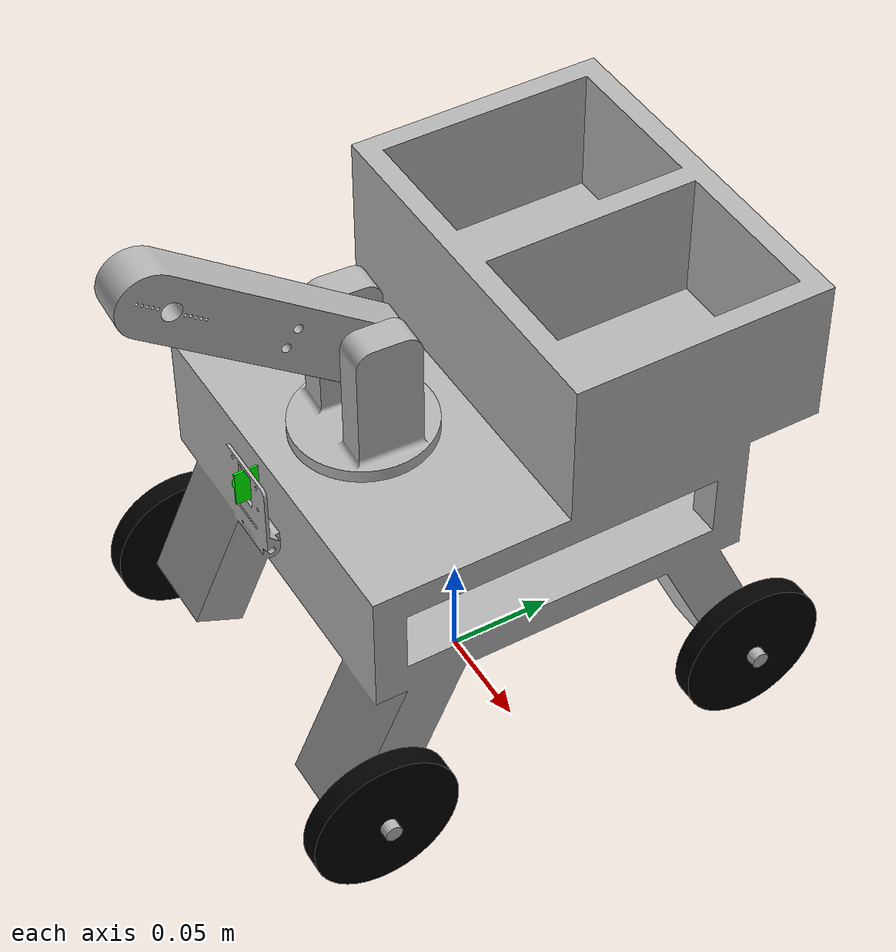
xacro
<?xml version="1.0" ?>
<robot name="my_robot" xmlns:xacro="http://www.ros.org/wiki/xacro">

<xacro:include filename="materials.xacro" />
<xacro:include filename="camera.xacro" />
<xacro:include filename="drive_control.xacro" />
<xacro:include filename="lidar.xacro" />

<link name="base_footprint"/>

<link name="base_link">
  <inertial>
    <origin xyz="-9.068721438447272e-07 0.016818956769741884 0.13757244036998353" rpy="0 0 0"/>
    <mass value="16.129870302720548"/>
    <inertia ixx="0.106544" iyy="0.090512" izz="0.122735" ixy="-2e-06" iyz="-0.015935" ixz="-0.0"/>
  </inertial>
  <visual>
    <origin xyz="0 0 0" rpy="0 0 0"/>
    <geometry>
      <mesh filename="file:///home/kaushik/major_ws/src/urdf_description/meshes/base_link.stl" scale="0.001 0.001 0.001"/>
    </geometry>
    <material name="silver"/>
  </visual>
  <collision>
    <origin xyz="0 0 0" rpy="0 0 0"/>
    <geometry>
      <mesh filename="file:///home/kaushik/major_ws/src/urdf_description/meshes/base_link.stl" scale="0.001 0.001 0.001"/>
    </geometry>
  </collision>
</link>

<link name="cam_link_1">
  <inertial>
    <origin xyz="0.00029040885549365706 -0.0010028948136634602 -0.00862499966472527" rpy="0 0 0"/>
    <mass value="0.0029877236299923403"/>
    <inertia ixx="0.0" iyy="0.0" izz="0.0" ixy="0.0" iyz="-0.0" ixz="0.0"/>
  </inertial>
  <visual>
    <origin xyz="0.0005 0.09925 -0.164544" rpy="0 0 0"/>
    <geometry>
      <mesh filename="file:///home/kaushik/major_ws/src/urdf_description/meshes/cam_link_1.stl" scale="0.001 0.001 0.001"/>
    </geometry>
    <material name="green"/>
  </visual>
  <collision>
    <origin xyz="0.0005 0.09925 -0.164544" rpy="0 0 0"/>
    <geometry>
      <mesh filename="file:///home/kaushik/major_ws/src/urdf_description/meshes/cam_link_1.stl" scale="0.001 0.001 0.001"/>
    </geometry>
  </collision>
</link>

<link name="left_wheel1_1">
  <inertial>
    <origin xyz="0.004999999999999963 2.695303707445085e-07 3.8435314280577115e-07" rpy="0 0 0"/>
    <mass value="0.300562059655161"/>
    <inertia ixx="0.000185" iyy="9.5e-05" izz="9.5e-05" ixy="0.0" iyz="-0.0" ixz="-0.0"/>
  </inertial>
  <visual>
    <origin xyz="-0.09 0.091905 -0.035" rpy="0 0 0"/>
    <geometry>
      <mesh filename="file:///home/kaushik/major_ws/src/urdf_description/meshes/left_wheel1_1.stl" scale="0.001 0.001 0.001"/>
    </geometry>
    <material name="black"/>
  </visual>
  <collision>
    <origin xyz="-0.09 0.091905 -0.035" rpy="0 0 0"/>
    <geometry>
      <mesh filename="file:///home/kaushik/major_ws/src/urdf_description/meshes/left_wheel1_1.stl" scale="0.001 0.001 0.001"/>
    </geometry>
  </collision>
</link>

<link name="left_wheel2_1">
  <inertial>
    <origin xyz="0.0049999999999999906 -2.6953037318699913e-07 3.8435314281271005e-07" rpy="0 0 0"/>
    <mass value="0.300562059655161"/>
    <inertia ixx="0.000185" iyy="9.5e-05" izz="9.5e-05" ixy="0.0" iyz="-0.0" ixz="-0.0"/>
  </inertial>
  <visual>
    <origin xyz="-0.09 -0.096905 -0.035" rpy="0 0 0"/>
    <geometry>
      <mesh filename="file:///home/kaushik/major_ws/src/urdf_description/meshes/left_wheel2_1.stl" scale="0.001 0.001 0.001"/>
    </geometry>
    <material name="black"/>
  </visual>
  <collision>
    <origin xyz="-0.09 -0.096905 -0.035" rpy="0 0 0"/>
    <geometry>
      <mesh filename="file:///home/kaushik/major_ws/src/urdf_description/meshes/left_wheel2_1.stl" scale="0.001 0.001 0.001"/>
    </geometry>
  </collision>
</link>

<link name="right_wheel1_1">
  <inertial>
    <origin xyz="-0.004999999999999935 2.6953037327026586e-07 3.8435314292373235e-07" rpy="0 0 0"/>
    <mass value="0.300562059655161"/>
    <inertia ixx="0.000185" iyy="9.5e-05" izz="9.5e-05" ixy="0.0" iyz="-0.0" ixz="-0.0"/>
  </inertial>
  <visual>
    <origin xyz="0.09 0.091905 -0.035" rpy="0 0 0"/>
    <geometry>
      <mesh filename="file:///home/kaushik/major_ws/src/urdf_description/meshes/right_wheel1_1.stl" scale="0.001 0.001 0.001"/>
    </geometry>
    <material name="black"/>
  </visual>
  <collision>
    <origin xyz="0.09 0.091905 -0.035" rpy="0 0 0"/>
    <geometry>
      <mesh filename="file:///home/kaushik/major_ws/src/urdf_description/meshes/right_wheel1_1.stl" scale="0.001 0.001 0.001"/>
    </geometry>
  </collision>
</link>

<link name="right_wheel2_1">
  <inertial>
    <origin xyz="-0.004999999999999963 -2.6953037078614184e-07 3.8435314279883226e-07" rpy="0 0 0"/>
    <mass value="0.3005620596551611"/>
    <inertia ixx="0.000185" iyy="9.5e-05" izz="9.5e-05" ixy="-0.0" iyz="-0.0" ixz="0.0"/>
  </inertial>
  <visual>
    <origin xyz="0.09 -0.096905 -0.035" rpy="0 0 0"/>
    <geometry>
      <mesh filename="file:///home/kaushik/major_ws/src/urdf_description/meshes/right_wheel2_1.stl" scale="0.001 0.001 0.001"/>
    </geometry>
    <material name="black"/>
  </visual>
  <collision>
    <origin xyz="0.09 -0.096905 -0.035" rpy="0 0 0"/>
    <geometry>
      <mesh filename="file:///home/kaushik/major_ws/src/urdf_description/meshes/right_wheel2_1.stl" scale="0.001 0.001 0.001"/>
    </geometry>
  </collision>
</link>

<link name="armbase_link_1">
  <inertial>
    <origin xyz="0.00022108018193362611 0.00038730930499579486 0.027399267414813827" rpy="0 0 0"/>
    <mass value="0.5767027085005034"/>
    <inertia ixx="0.000314" iyy="0.000427" izz="0.000258" ixy="6e-06" iyz="-2e-06" ixz="-1e-06"/>
  </inertial>
  <visual>
    <origin xyz="0.0 0.044 -0.162294" rpy="0 0 0"/>
    <geometry>
      <mesh filename="file:///home/kaushik/major_ws/src/urdf_description/meshes/armbase_link_1.stl" scale="0.001 0.001 0.001"/>
    </geometry>
    <material name="silver"/>
  </visual>
  <collision>
    <origin xyz="0.0 0.044 -0.162294" rpy="0 0 0"/>
    <geometry>
      <mesh filename="file:///home/kaushik/major_ws/src/urdf_description/meshes/armbase_link_1.stl" scale="0.001 0.001 0.001"/>
    </geometry>
  </collision>
</link>

<link name="arm1_link_1">
  <inertial>
    <origin xyz="0.007283258896485331 -0.04475419067069337 0.031049988379295457" rpy="0 0 0"/>
    <mass value="0.5865146005990974"/>
    <inertia ixx="0.000934" iyy="0.000342" izz="0.00063" ixy="-2.9e-05" iyz="0.000397" ixz="1.9e-05"/>
  </inertial>
  <visual>
    <origin xyz="0.010191 0.042967 -0.209591" rpy="0 0 0"/>
    <geometry>
      <mesh filename="file:///home/kaushik/major_ws/src/urdf_description/meshes/arm1_link_1.stl" scale="0.001 0.001 0.001"/>
    </geometry>
    <material name="silver"/>
  </visual>
  <collision>
    <origin xyz="0.010191 0.042967 -0.209591" rpy="0 0 0"/>
    <geometry>
      <mesh filename="file:///home/kaushik/major_ws/src/urdf_description/meshes/arm1_link_1.stl" scale="0.001 0.001 0.001"/>
    </geometry>
  </collision>
</link>

<joint name="armbase_link_base_link" type="continuous">
  <origin xyz="0.0 -0.044 0.162294" rpy="0 0 0"/>
  <parent link="base_link"/>
  <child link="armbase_link_1"/>
  <axis xyz="-0.0 0.0 1.0"/>
</joint>

<joint name="arm1_link_armbase_link" type="revolute">
  <origin xyz="-0.010191 0.001033 0.047297" rpy="0 0 0"/>
  <parent link="armbase_link_1"/>
  <child link="arm1_link_1"/>
  <axis xyz="0.9988 -0.048965 -0.0"/>
  <limit upper="0.349066" lower="-2.181662" effort="100" velocity="100"/>
</joint>

<joint name="cam_link_base_link_joint" type="fixed">
  <origin xyz="-0.0005 -0.09925 0.164544" rpy="0 0 -1.5708"/>
  <parent link="base_link"/>
  <child link="cam_link_1"/>
</joint>

<joint name="base_footprint_to_base_link_joint" type="fixed">
  <origin xyz="0 0 0" rpy="0 0 0"/>
  <parent link="base_footprint"/>
  <child link="base_link"/>
</joint>

<joint name="left_wheel1_base_link_joint" type="continuous">
  <origin xyz="0.09 -0.091905 0.035" rpy="0 0 0"/>
  <parent link="base_link"/>
  <child link="left_wheel1_1"/>
  <axis xyz="1.0 0.0 0.0"/>
</joint>

<joint name="left_wheel2_base_link_joint" type="continuous">
  <origin xyz="0.09 0.096905 0.035" rpy="0 0 0"/>
  <parent link="base_link"/>
  <child link="left_wheel2_1"/>
  <axis xyz="1.0 0.0 0.0"/>
</joint>

<joint name="right_wheel1_base_link_joint" type="continuous">
  <origin xyz="-0.09 -0.091905 0.035" rpy="0 0 0"/>
  <parent link="base_link"/>
  <child link="right_wheel1_1"/>
  <axis xyz="1.0 0.0 0.0"/>
</joint>

<joint name="right_wheel2_base_link_joint" type="continuous">
  <origin xyz="-0.09 0.096905 0.035" rpy="0 0 0"/>
  <parent link="base_link"/>
  <child link="right_wheel2_1"/>
  <axis xyz="1.0 0.0 0.0"/>
</joint>

</robot>

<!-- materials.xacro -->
<robot xmlns:xacro="http://www.ros.org/wiki/xacro">

  <material name="silver">
    <color rgba="0.7 0.7 0.7 1.0"/>
  </material>

  <material name="white">
    <color rgba="1.0 1.0 1.0 1.0"/>
  </material>

  <material name="green">
    <color rgba="0.0 1.0 0.0 1.0"/>
  </material>

  <material name="black">
    <color rgba="0.0 0.0 0.0 1.0"/>
  </material>

</robot>

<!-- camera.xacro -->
<robot xmlns:xacro="http://www.ros.org/wiki/xacro" >

<xacro:property name="cam_color" value="Gazebo/Green" />

<gazebo reference="cam_link_1">
  <material>${cam_color}</material>
  <mu1>0.2</mu1>
  <mu2>0.2</mu2>
  <self_collide>true</self_collide>

  <sensor name="camera" type="camera">
    <pose>0 0 1.5708 0 0 0</pose>

    <camera>
      <horizontal_fov>1.047</horizontal_fov>
      <image>
        <width>640</width>
        <height>480</height>
        <format>R8G8B8</format>
      </image>
      <clip><near>0.02</near><far>300</far></clip>
    </camera>

    <always_on>1</always_on>
    <update_rate>30</update_rate>
    <visualize>true</visualize>

    <plugin name="camera_controller" filename="libgazebo_ros_camera.so">
        <ros>
          <remapping>image_raw:=image_raw</remapping>
          <remapping>camera_info:=camera_info</remapping>
        </ros>
        <camera_name>camera</camera_name>
        <frame_name>cam_link_1</frame_name>
      </plugin>
  </sensor>
</gazebo>
</robot>

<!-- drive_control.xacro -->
<robot xmlns:xacro="http://www.ros.org/wiki/xacro">

    <xacro:property name="body_color" value="Gazebo/Silver" />
    <xacro:property name="wheel_color" value="Gazebo/Black" />

<gazebo reference="base_link">
  <material>${body_color}</material>
  <mu1>0.5</mu1>
  <mu2>0.5</mu2>
  <self_collide>true</self_collide>
  <gravity>true</gravity>
</gazebo>

<gazebo reference="right_wheel2_1">
  <material>${wheel_color}</material>
  <mu1>4.0</mu1>
  <mu2>4.0</mu2>
  <self_collide>true</self_collide>
</gazebo>

<gazebo reference="right_wheel1_1">
  <material>${wheel_color}</material>
  <mu1>4.0</mu1>
  <mu2>4.0</mu2>
  <self_collide>true</self_collide>
</gazebo>

<gazebo reference="left_wheel1_1">
  <material>${wheel_color}</material>
  <mu1>4.0</mu1>
  <mu2>4.0</mu2>
  <self_collide>true</self_collide>
</gazebo>

<gazebo reference="left_wheel2_1">
  <material>${wheel_color}</material>
  <mu1>4.0</mu1>
  <mu2>4.0</mu2>
  <self_collide>true</self_collide>
</gazebo>

<gazebo>
  <plugin name="diff_drive" filename="libgazebo_ros_diff_drive.so">
    <left_joint>left_wheel1_base_link_joint</left_joint>
    <right_joint>right_wheel1_base_link_joint</right_joint>

    <wheel_separation>0.1838</wheel_separation>
    <wheel_diameter>0.065</wheel_diameter>
    <command_topic>/cmd_vel</command_topic>

    <odometry_topic>/odom</odometry_topic>
    <publish_odom>true</publish_odom>
    <publish_odom_tf>true</publish_odom_tf>
    <robot_base_frame>base_footprint</robot_base_frame>
    <max_wheel_torque>40</max_wheel_torque>
    <max_wheel_acceleration>0.5</max_wheel_acceleration>
  </plugin>
</gazebo>

</robot>
